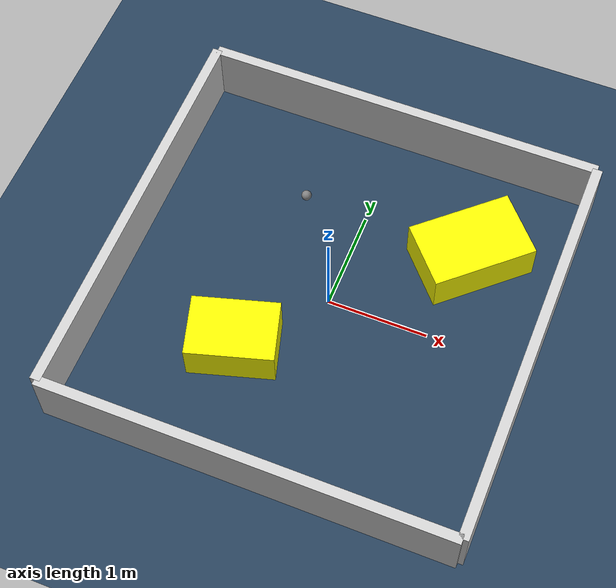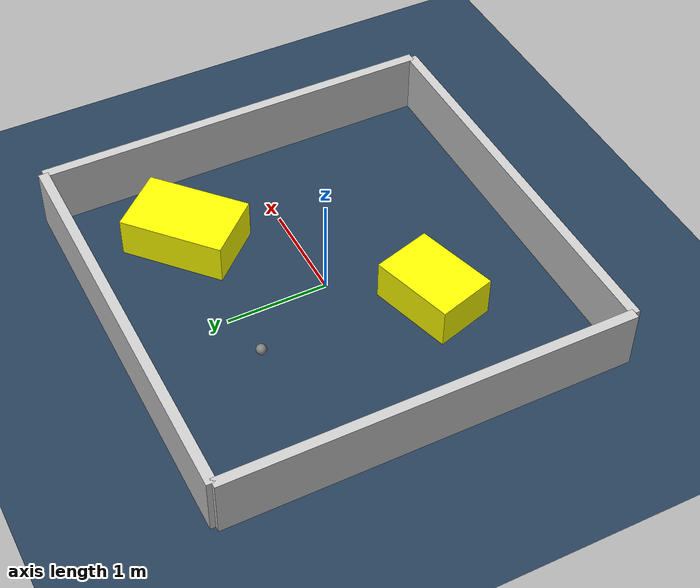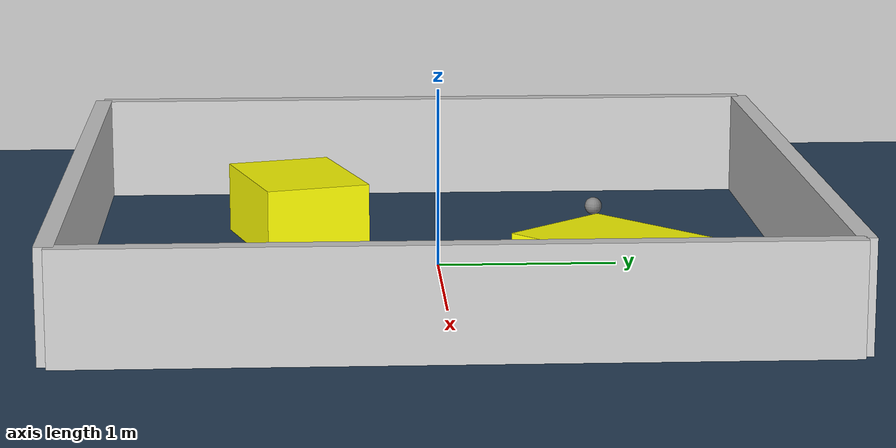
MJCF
<?xml version="1.0" ?>
<mujoco model="generated_environment">
  <option timestep="0.01" integrator="RK4" cone="elliptic"/>
  <default>
    <geom density="1"/>
  </default>
  <asset>
    <texture builtin="gradient" height="3072" rgb1="0.3 0.5 0.7" rgb2="0 0 0" type="skybox" width="512"/>
    <texture builtin="checker" height="300" mark="edge" markrgb="0.8 0.8 0.8" name="groundplane" rgb1="0.2 0.3 0.4" rgb2="0.1 0.2 0.3" type="2d" width="300"/>
    <material name="groundplane" reflectance="0.2" texrepeat="5 5" texture="groundplane" texuniform="true"/>
    <material name="robot" rgba="0.0 1.0 0.0 1"/>
  </asset>
  <worldbody>
    <light dir="0 0 -1" directional="true" pos="0 0 1.5"/>
    <geom condim="4" friction="1.0 0.005 0.001" material="groundplane" name="floor" size="0 0 0.05" type="plane"/>
    <body name="walls">
      <geom name="wall_1" condim="4" pos="-2.0 0.0 0.3" rgba="0.800000011920929 0.800000011920929 0.800000011920929 1.0" size="0.05 2.0 0.3" type="box"/>
      <geom name="wall_2" condim="4" pos="2.0 0.0 0.3" rgba="0.800000011920929 0.800000011920929 0.800000011920929 1.0" size="0.05 2.0 0.3" type="box"/>
      <geom name="wall_3" condim="4" pos="0.0 -2.0 0.3" rgba="0.800000011920929 0.800000011920929 0.800000011920929 1.0" size="2.0 0.05 0.3" type="box"/>
      <geom name="wall_4" condim="4" pos="0.0 2.0 0.3" rgba="0.800000011920929 0.800000011920929 0.800000011920929 1.0" size="2.0 0.05 0.3" type="box"/>
    </body>
    <body name="robot">
      <joint name="joint_x" type="slide" pos="0 0 0" axis="1 0 0"/>
      <joint name="joint_y" type="slide" pos="0 0 0" axis="0 1 0"/>
      <geom name="robot" type="sphere" pos="-0.6026568459603143 0.9366462621489338 0.2" size="0.05" mass="5." friction="1.0 0.005 0.0001" condim="4"/>
      <site name="sensor_ball"/>
    </body>
    <body name="obstacle_1_movable">
      <geom name="obstacle_1_movable" condim="4" pos="1.1048863274611436 0.9356061995508458 0.2" euler="0 0 132.19268030900557" friction="1.0 0.005 0.001" rgba="1 1 0 1" size="0.3368699521051167 0.5171132783296402 0.2" type="box" mass="0.1"/>
      <joint type="free"/>
    </body>
    <body name="obstacle_2_movable">
      <geom name="obstacle_2_movable" condim="4" pos="-0.637036744626476 -0.784537744374026 0.2" euler="0 0 106.37400322489702" friction="1.0 0.005 0.001" rgba="1 1 0 1" size="0.3005028661148057 0.4202797124014134 0.2" type="box" mass="0.1"/>
      <joint type="free"/>
    </body>
  </worldbody>
  <actuator>
    <motor name="actuator_x" joint="joint_x" gear="1" ctrlrange="-1 1"/>
    <motor name="actuator_y" joint="joint_y" gear="1" ctrlrange="-1 1"/>
  </actuator>
</mujoco>
